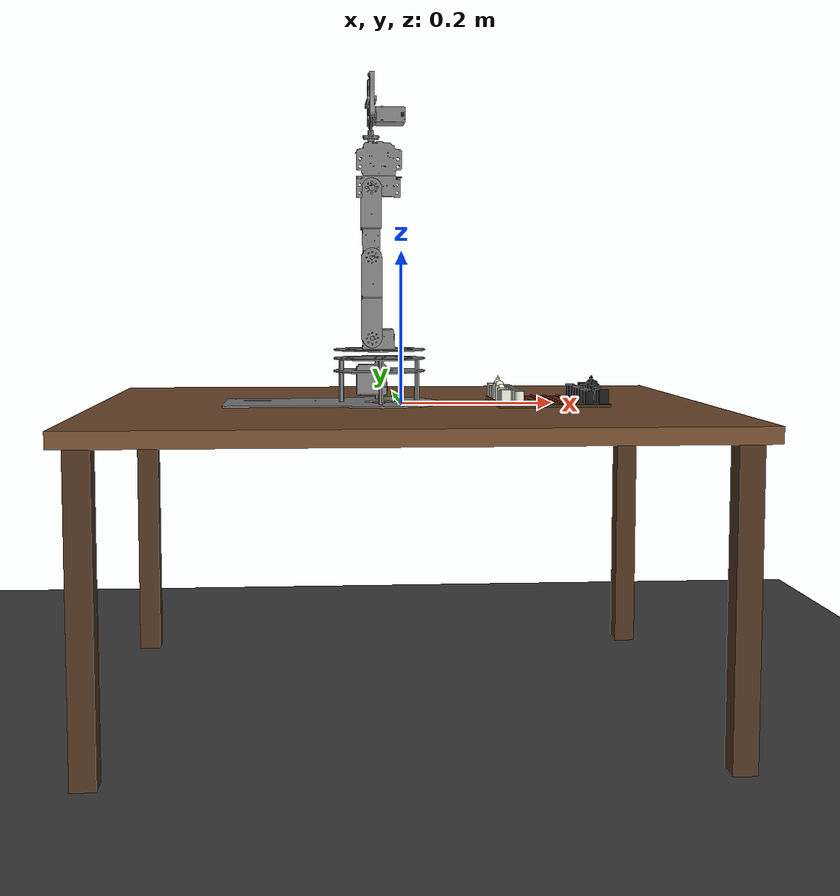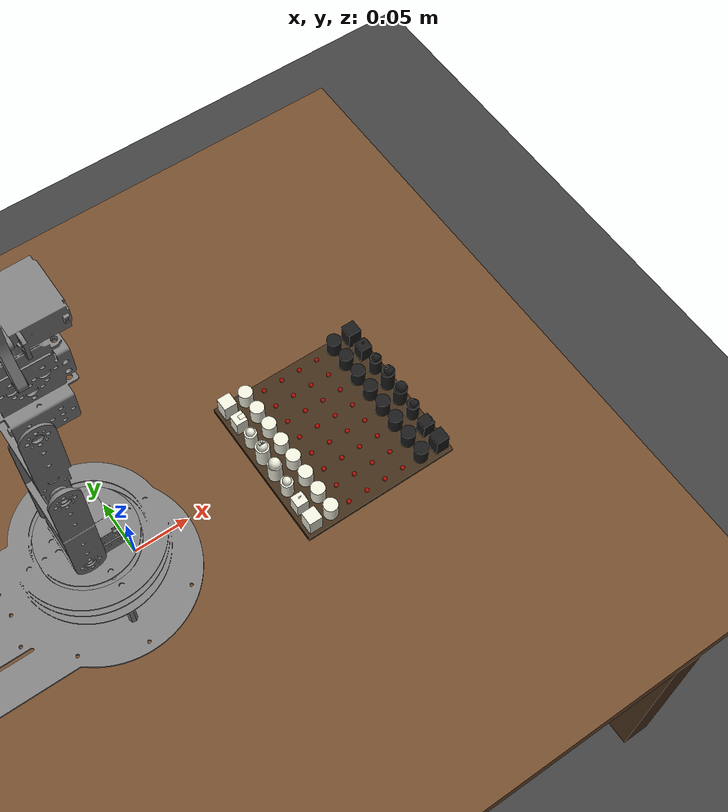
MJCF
<mujoco model="chess_table">
  <compiler angle="radian"/>

  <option integrator="implicitfast"/>

  <visual>
    <global offwidth="1280" offheight="960"/>
    <headlight ambient="0.4 0.4 0.4" diffuse="0.6 0.6 0.6"/>
  </visual>

  <default>
    <default class="arm_main"/>
  </default>

  <asset>
    <texture type="skybox" colorspace="auto" builtin="gradient" rgb1="0.3 0.5 0.7" rgb2="0 0 0" width="256" height="1536"/>
    <texture type="2d" colorspace="auto" name="floor_tex" builtin="checker" rgb1="0.2 0.2 0.2" rgb2="0.3 0.3 0.3" width="300" height="300"/>
    <texture type="2d" colorspace="auto" name="board_tex" builtin="checker" rgb1="0.85 0.82 0.7" rgb2="0.2 0.15 0.1" width="64" height="64"/>
    <material name="floor_mat" texture="floor_tex" texrepeat="6 6"/>
    <material name="table_mat" rgba="0.45 0.3 0.18 1"/>
    <material name="leg_mat" rgba="0.3 0.2 0.12 1"/>
    <material name="board_mat" texture="board_tex" texrepeat="4 4" reflectance="0.05"/>
    <mesh name="arm_base" file="meshes/base.stl"/>
    <mesh name="arm_shoulder" file="meshes/shoulder.stl"/>
    <mesh name="arm_humerus" file="meshes/humerus.stl"/>
    <mesh name="arm_forearm" file="meshes/forearm.stl"/>
    <mesh name="arm_wrist" file="meshes/wrist.stl"/>
    <mesh name="arm_hand" file="meshes/hand.stl"/>
    <mesh name="arm_carpal-left" file="meshes/carpal-left.stl"/>
    <mesh name="arm_carpal-right" file="meshes/carpal-right.stl"/>
    <mesh name="arm_tendon" file="meshes/tendon.stl"/>
    <mesh name="arm_finger" file="meshes/finger.stl"/>
  </asset>

  <worldbody>
    <geom name="floor" size="1.5 1.5 0.01" pos="0 0 -0.4" type="plane" material="floor_mat"/>
    <light pos="0 0 1.5" dir="0 0 -1" type="directional" specular="0.2 0.2 0.2"/>
    <light pos="0.3 0.3 1.2" dir="-0.276172 -0.276172 -0.920575" type="directional" diffuse="0.3 0.3 0.3"/>
    <body name="table">
      <geom name="tabletop" size="0.4 0.32 0.01" pos="0 0 -0.01" type="box" material="table_mat"/>
      <geom name="leg_fl" size="0.015 0.015 0.19" pos="0.37 0.29 -0.21" type="box" material="leg_mat"/>
      <geom name="leg_fr" size="0.015 0.015 0.19" pos="0.37 -0.29 -0.21" type="box" material="leg_mat"/>
      <geom name="leg_bl" size="0.015 0.015 0.19" pos="-0.37 0.29 -0.21" type="box" material="leg_mat"/>
      <geom name="leg_br" size="0.015 0.015 0.19" pos="-0.37 -0.29 -0.21" type="box" material="leg_mat"/>
    </body>
    <body name="chessboard" pos="0.192 0 0">
      <geom name="board_base" size="0.072 0.072 0.002" pos="0 0 0.002" type="box" rgba="0.25 0.18 0.1 1"/>
      <geom name="board_slab" size="0.072 0.072 0.01" pos="0 0 0.0045" type="plane" material="board_mat"/>
      <site name="sq_a1" pos="-0.063 -0.063 0.0046" size="0.002" rgba="1 0 0 0.6"/>
      <site name="sq_a2" pos="-0.045 -0.063 0.0046" size="0.002" rgba="1 0 0 0.6"/>
      <site name="sq_a3" pos="-0.027 -0.063 0.0046" size="0.002" rgba="1 0 0 0.6"/>
      <site name="sq_a4" pos="-0.009 -0.063 0.0046" size="0.002" rgba="1 0 0 0.6"/>
      <site name="sq_a5" pos="0.009 -0.063 0.0046" size="0.002" rgba="1 0 0 0.6"/>
      <site name="sq_a6" pos="0.027 -0.063 0.0046" size="0.002" rgba="1 0 0 0.6"/>
      <site name="sq_a7" pos="0.045 -0.063 0.0046" size="0.002" rgba="1 0 0 0.6"/>
      <site name="sq_a8" pos="0.063 -0.063 0.0046" size="0.002" rgba="1 0 0 0.6"/>
      <site name="sq_b1" pos="-0.063 -0.045 0.0046" size="0.002" rgba="1 0 0 0.6"/>
      <site name="sq_b2" pos="-0.045 -0.045 0.0046" size="0.002" rgba="1 0 0 0.6"/>
      <site name="sq_b3" pos="-0.027 -0.045 0.0046" size="0.002" rgba="1 0 0 0.6"/>
      <site name="sq_b4" pos="-0.009 -0.045 0.0046" size="0.002" rgba="1 0 0 0.6"/>
      <site name="sq_b5" pos="0.009 -0.045 0.0046" size="0.002" rgba="1 0 0 0.6"/>
      <site name="sq_b6" pos="0.027 -0.045 0.0046" size="0.002" rgba="1 0 0 0.6"/>
      <site name="sq_b7" pos="0.045 -0.045 0.0046" size="0.002" rgba="1 0 0 0.6"/>
      <site name="sq_b8" pos="0.063 -0.045 0.0046" size="0.002" rgba="1 0 0 0.6"/>
      <site name="sq_c1" pos="-0.063 -0.027 0.0046" size="0.002" rgba="1 0 0 0.6"/>
      <site name="sq_c2" pos="-0.045 -0.027 0.0046" size="0.002" rgba="1 0 0 0.6"/>
      <site name="sq_c3" pos="-0.027 -0.027 0.0046" size="0.002" rgba="1 0 0 0.6"/>
      <site name="sq_c4" pos="-0.009 -0.027 0.0046" size="0.002" rgba="1 0 0 0.6"/>
      <site name="sq_c5" pos="0.009 -0.027 0.0046" size="0.002" rgba="1 0 0 0.6"/>
      <site name="sq_c6" pos="0.027 -0.027 0.0046" size="0.002" rgba="1 0 0 0.6"/>
      <site name="sq_c7" pos="0.045 -0.027 0.0046" size="0.002" rgba="1 0 0 0.6"/>
      <site name="sq_c8" pos="0.063 -0.027 0.0046" size="0.002" rgba="1 0 0 0.6"/>
      <site name="sq_d1" pos="-0.063 -0.009 0.0046" size="0.002" rgba="1 0 0 0.6"/>
      <site name="sq_d2" pos="-0.045 -0.009 0.0046" size="0.002" rgba="1 0 0 0.6"/>
      <site name="sq_d3" pos="-0.027 -0.009 0.0046" size="0.002" rgba="1 0 0 0.6"/>
      <site name="sq_d4" pos="-0.009 -0.009 0.0046" size="0.002" rgba="1 0 0 0.6"/>
      <site name="sq_d5" pos="0.009 -0.009 0.0046" size="0.002" rgba="1 0 0 0.6"/>
      <site name="sq_d6" pos="0.027 -0.009 0.0046" size="0.002" rgba="1 0 0 0.6"/>
      <site name="sq_d7" pos="0.045 -0.009 0.0046" size="0.002" rgba="1 0 0 0.6"/>
      <site name="sq_d8" pos="0.063 -0.009 0.0046" size="0.002" rgba="1 0 0 0.6"/>
      <site name="sq_e1" pos="-0.063 0.009 0.0046" size="0.002" rgba="1 0 0 0.6"/>
      <site name="sq_e2" pos="-0.045 0.009 0.0046" size="0.002" rgba="1 0 0 0.6"/>
      <site name="sq_e3" pos="-0.027 0.009 0.0046" size="0.002" rgba="1 0 0 0.6"/>
      <site name="sq_e4" pos="-0.009 0.009 0.0046" size="0.002" rgba="1 0 0 0.6"/>
      <site name="sq_e5" pos="0.009 0.009 0.0046" size="0.002" rgba="1 0 0 0.6"/>
      <site name="sq_e6" pos="0.027 0.009 0.0046" size="0.002" rgba="1 0 0 0.6"/>
      <site name="sq_e7" pos="0.045 0.009 0.0046" size="0.002" rgba="1 0 0 0.6"/>
      <site name="sq_e8" pos="0.063 0.009 0.0046" size="0.002" rgba="1 0 0 0.6"/>
      <site name="sq_f1" pos="-0.063 0.027 0.0046" size="0.002" rgba="1 0 0 0.6"/>
      <site name="sq_f2" pos="-0.045 0.027 0.0046" size="0.002" rgba="1 0 0 0.6"/>
      <site name="sq_f3" pos="-0.027 0.027 0.0046" size="0.002" rgba="1 0 0 0.6"/>
      <site name="sq_f4" pos="-0.009 0.027 0.0046" size="0.002" rgba="1 0 0 0.6"/>
      <site name="sq_f5" pos="0.009 0.027 0.0046" size="0.002" rgba="1 0 0 0.6"/>
      <site name="sq_f6" pos="0.027 0.027 0.0046" size="0.002" rgba="1 0 0 0.6"/>
      <site name="sq_f7" pos="0.045 0.027 0.0046" size="0.002" rgba="1 0 0 0.6"/>
      <site name="sq_f8" pos="0.063 0.027 0.0046" size="0.002" rgba="1 0 0 0.6"/>
      <site name="sq_g1" pos="-0.063 0.045 0.0046" size="0.002" rgba="1 0 0 0.6"/>
      <site name="sq_g2" pos="-0.045 0.045 0.0046" size="0.002" rgba="1 0 0 0.6"/>
      <site name="sq_g3" pos="-0.027 0.045 0.0046" size="0.002" rgba="1 0 0 0.6"/>
      <site name="sq_g4" pos="-0.009 0.045 0.0046" size="0.002" rgba="1 0 0 0.6"/>
      <site name="sq_g5" pos="0.009 0.045 0.0046" size="0.002" rgba="1 0 0 0.6"/>
      <site name="sq_g6" pos="0.027 0.045 0.0046" size="0.002" rgba="1 0 0 0.6"/>
      <site name="sq_g7" pos="0.045 0.045 0.0046" size="0.002" rgba="1 0 0 0.6"/>
      <site name="sq_g8" pos="0.063 0.045 0.0046" size="0.002" rgba="1 0 0 0.6"/>
      <site name="sq_h1" pos="-0.063 0.063 0.0046" size="0.002" rgba="1 0 0 0.6"/>
      <site name="sq_h2" pos="-0.045 0.063 0.0046" size="0.002" rgba="1 0 0 0.6"/>
      <site name="sq_h3" pos="-0.027 0.063 0.0046" size="0.002" rgba="1 0 0 0.6"/>
      <site name="sq_h4" pos="-0.009 0.063 0.0046" size="0.002" rgba="1 0 0 0.6"/>
      <site name="sq_h5" pos="0.009 0.063 0.0046" size="0.002" rgba="1 0 0 0.6"/>
      <site name="sq_h6" pos="0.027 0.063 0.0046" size="0.002" rgba="1 0 0 0.6"/>
      <site name="sq_h7" pos="0.045 0.063 0.0046" size="0.002" rgba="1 0 0 0.6"/>
      <site name="sq_h8" pos="0.063 0.063 0.0046" size="0.002" rgba="1 0 0 0.6"/>
    </body>
    <body name="arm_base_link" pos="-0.03 0 0">
      <inertial pos="-0.06074 0 0.03285" quat="0 0.707107 0 0.707107" mass="0.05013" diaginertia="0.0004413 0.0003608 0.0001333"/>
      <geom type="mesh" contype="0" conaffinity="0" group="1" density="0" mesh="arm_base"/>
      <body name="arm_shoulder_link" pos="0 0 0.059">
        <inertial pos="-0.00071 0 0.02011" quat="0.5 0.5 -0.5 0.5" mass="0.01934" diaginertia="2.115e-05 1.303e-05 1.303e-05"/>
        <joint name="arm_shoulder_pan" pos="0 0 0" axis="0 0 1" range="-1.57 1.57" actuatorfrcrange="-1000 1000" armature="0.002"/>
        <geom type="mesh" contype="0" conaffinity="0" group="1" density="0" mesh="arm_shoulder"/>
        <body name="arm_humerus_link" pos="-0.01 0 0.028">
          <inertial pos="0.00021 -0.00054 0.0526" mass="0.00777" diaginertia="1.281e-05 1.119e-05 2.437e-06"/>
          <joint name="arm_shoulder_lift" pos="0 0 0" axis="0 1 0" range="-1.57 1.57" actuatorfrcrange="-1000 1000" armature="0.002"/>
          <geom type="mesh" contype="0" conaffinity="0" group="1" density="0" mesh="arm_humerus"/>
          <body name="arm_forearm_link" pos="0 0 0.105">
            <inertial pos="-4e-05 0 0.04562" mass="0.0167" diaginertia="2.15e-05 1.801e-05 5.233e-06"/>
            <joint name="arm_elbow" pos="0 0 0" axis="0 -1 0" range="-1.57 1.57" actuatorfrcrange="-1000 1000" armature="0.002"/>
            <geom type="mesh" contype="0" conaffinity="0" group="1" density="0" mesh="arm_forearm"/>
            <body name="arm_wrist_link" pos="0 0 0.09">
              <inertial pos="0.00986 0.00055 0.02407" quat="0.707107 0 0 0.707107" mass="0.01248" diaginertia="8.791e-06 7.419e-06 5.697e-06"/>
              <joint name="arm_wrist_flex" pos="0 0 0" axis="0 -1 0" range="-1.57 1.57" actuatorfrcrange="-1000 1000" armature="0.002"/>
              <geom type="mesh" contype="0" conaffinity="0" group="1" density="0" mesh="arm_wrist"/>
              <body name="arm_hand_link" pos="0 0 0.06">
                <inertial pos="0.01616 -0.00431 0.02777" mass="0.00687" diaginertia="3.57e-06 3.492e-06 3.468e-06"/>
                <joint name="arm_wrist_roll" pos="0 0 0" axis="0 0 1" range="-1.57 1.57" actuatorfrcrange="-1000 1000" armature="0.002"/>
                <geom type="mesh" contype="0" conaffinity="0" group="1" density="0" mesh="arm_hand"/>
                <site name="gripper_tip" pos="0 0 0.085" size="0.004"/>
                <body name="arm_grip_left_link" pos="0 0.015 0.03" quat="0.707388 -0.706825 0 0">
                  <inertial pos="-0.00029 -0.00139 0.00928" mass="0.005" diaginertia="1.343e-06 1.024e-06 3.261e-07"/>
                  <joint name="arm_grip_left" pos="0 0 0" axis="-1 0 0" range="-1.57 0" actuatorfrcrange="-1000 1000" armature="0.002"/>
                  <geom type="mesh" contype="0" conaffinity="0" group="1" density="0" mesh="arm_carpal-left"/>
                  <body name="arm_finger_left_link" pos="0 0 0.03" quat="0.707388 0.706825 0 0">
                    <inertial pos="4e-05 -0.00518 0.02471" mass="0.005" diaginertia="1.641e-06 1.482e-06 1.891e-07"/>
                    <joint name="arm_finger_left" pos="0 0 0" axis="-1 0 0" range="-3.14 3.14" actuatorfrcrange="-1000 1000" damping="0.08"/>
                    <geom type="mesh" contype="0" conaffinity="0" group="1" density="0" mesh="arm_finger"/>
                  </body>
                </body>
                <body name="arm_grip_right_link" pos="0 -0.015 0.03" quat="0.707388 0.706825 0 0">
                  <inertial pos="0.00458 0.00164 0.00981" mass="0.005" diaginertia="1.344e-06 1.047e-06 3.536e-07"/>
                  <joint name="arm_grip_right" pos="0 0 0" axis="-1 0 0" range="-3.14 3.14" actuatorfrcrange="-1000 1000" damping="0.08"/>
                  <geom type="mesh" contype="0" conaffinity="0" group="1" density="0" mesh="arm_carpal-right"/>
                  <body name="arm_finger_right_link" pos="0 0 0.03" quat="0.707388 -0.706825 0 0">
                    <inertial pos="4e-05 -0.00518 0.02471" mass="0.005" diaginertia="1.641e-06 1.482e-06 1.891e-07"/>
                    <joint name="arm_finger_right" pos="0 0 0" axis="-1 0 0" range="-3.14 3.14" actuatorfrcrange="-1000 1000" damping="0.08"/>
                    <geom quat="1.32679e-06 0 0 1" type="mesh" contype="0" conaffinity="0" group="1" density="0" mesh="arm_finger"/>
                  </body>
                </body>
                <body name="arm_tendon_left_link" pos="0 0.005 0.05" quat="0.707388 -0.706825 0 0">
                  <inertial pos="4e-05 -8e-05 0.01451" quat="0.707107 0 0 0.707107" mass="0.005" diaginertia="6e-07 5.61e-07 8.101e-08"/>
                  <joint name="arm_tendon_left" pos="0 0 0" axis="-1 0 0" range="-3.14 3.14" actuatorfrcrange="-1000 1000" damping="0.08"/>
                  <geom type="mesh" contype="0" conaffinity="0" group="1" density="0" mesh="arm_tendon"/>
                </body>
                <body name="arm_tendon_right_link" pos="0 -0.005 0.05" quat="0.707388 0.706825 0 0">
                  <inertial pos="4e-05 -8e-05 0.01451" quat="0.707107 0 0 0.707107" mass="0.005" diaginertia="6e-07 5.61e-07 8.101e-08"/>
                  <joint name="arm_tendon_right" pos="0 0 0" axis="-1 0 0" range="-3.14 3.14" actuatorfrcrange="-1000 1000" damping="0.08"/>
                  <geom type="mesh" contype="0" conaffinity="0" group="1" density="0" mesh="arm_tendon"/>
                </body>
              </body>
            </body>
          </body>
        </body>
      </body>
    </body>
    <body name="piece_a1" pos="0.129 -0.063 0.0046">
      <joint type="free"/>
      <geom size="0.00612 0.00612 0.009" pos="0 0 0.009" type="box" rgba="0.92 0.92 0.85 1"/>
    </body>
    <body name="piece_a8" pos="0.255 -0.063 0.0046">
      <joint type="free"/>
      <geom size="0.00612 0.00612 0.009" pos="0 0 0.009" type="box" rgba="0.1 0.1 0.1 1"/>
    </body>
    <body name="piece_b1" pos="0.129 -0.045 0.0046">
      <joint type="free"/>
      <geom size="0.0054 0.0054 0.0081" pos="0 0 0.0081" type="box" rgba="0.92 0.92 0.85 1"/>
      <geom size="0.00288 0.00216 0.00216" pos="0.00288 0 0.01404" type="box" rgba="0.92 0.92 0.85 1"/>
    </body>
    <body name="piece_b8" pos="0.255 -0.045 0.0046">
      <joint type="free"/>
      <geom size="0.0054 0.0054 0.0081" pos="0 0 0.0081" type="box" rgba="0.1 0.1 0.1 1"/>
      <geom size="0.00288 0.00216 0.00216" pos="0.00288 0 0.01404" type="box" rgba="0.1 0.1 0.1 1"/>
    </body>
    <body name="piece_c1" pos="0.129 -0.027 0.0046">
      <joint type="free"/>
      <geom size="0.0054 0.009" pos="0 0 0.009" type="cylinder" rgba="0.92 0.92 0.85 1"/>
      <geom size="0.00396" pos="0 0 0.0189" rgba="0.92 0.92 0.85 1"/>
    </body>
    <body name="piece_c8" pos="0.255 -0.027 0.0046">
      <joint type="free"/>
      <geom size="0.0054 0.009" pos="0 0 0.009" type="cylinder" rgba="0.1 0.1 0.1 1"/>
      <geom size="0.00396" pos="0 0 0.0189" rgba="0.1 0.1 0.1 1"/>
    </body>
    <body name="piece_d1" pos="0.129 -0.009 0.0046">
      <joint type="free"/>
      <geom size="0.00612 0.0099" pos="0 0 0.0099" type="cylinder" rgba="0.92 0.92 0.85 1"/>
      <geom size="0.0054" pos="0 0 0.0207" rgba="0.92 0.92 0.85 1"/>
    </body>
    <body name="piece_d8" pos="0.255 -0.009 0.0046">
      <joint type="free"/>
      <geom size="0.00612 0.0099" pos="0 0 0.0099" type="cylinder" rgba="0.1 0.1 0.1 1"/>
      <geom size="0.0054" pos="0 0 0.0207" rgba="0.1 0.1 0.1 1"/>
    </body>
    <body name="piece_e1" pos="0.129 0.009 0.0046">
      <joint type="free"/>
      <geom size="0.00612 0.0108" pos="0 0 0.0108" type="cylinder" rgba="0.92 0.92 0.85 1"/>
      <geom size="0.00468" pos="0 0 0.02232" rgba="0.92 0.92 0.85 1"/>
      <geom size="0.0009 0.0009 0.00324" pos="0 0 0.0279" type="box" rgba="0.92 0.92 0.85 1"/>
      <geom size="0.00252 0.0009 0.0009" pos="0 0 0.0279" type="box" rgba="0.92 0.92 0.85 1"/>
    </body>
    <body name="piece_e8" pos="0.255 0.009 0.0046">
      <joint type="free"/>
      <geom size="0.00612 0.0108" pos="0 0 0.0108" type="cylinder" rgba="0.1 0.1 0.1 1"/>
      <geom size="0.00468" pos="0 0 0.02232" rgba="0.1 0.1 0.1 1"/>
      <geom size="0.0009 0.0009 0.00324" pos="0 0 0.0279" type="box" rgba="0.1 0.1 0.1 1"/>
      <geom size="0.00252 0.0009 0.0009" pos="0 0 0.0279" type="box" rgba="0.1 0.1 0.1 1"/>
    </body>
    <body name="piece_f1" pos="0.129 0.027 0.0046">
      <joint type="free"/>
      <geom size="0.0054 0.009" pos="0 0 0.009" type="cylinder" rgba="0.92 0.92 0.85 1"/>
      <geom size="0.00396" pos="0 0 0.0189" rgba="0.92 0.92 0.85 1"/>
    </body>
    <body name="piece_f8" pos="0.255 0.027 0.0046">
      <joint type="free"/>
      <geom size="0.0054 0.009" pos="0 0 0.009" type="cylinder" rgba="0.1 0.1 0.1 1"/>
      <geom size="0.00396" pos="0 0 0.0189" rgba="0.1 0.1 0.1 1"/>
    </body>
    <body name="piece_g1" pos="0.129 0.045 0.0046">
      <joint type="free"/>
      <geom size="0.0054 0.0054 0.0081" pos="0 0 0.0081" type="box" rgba="0.92 0.92 0.85 1"/>
      <geom size="0.00288 0.00216 0.00216" pos="0.00288 0 0.01404" type="box" rgba="0.92 0.92 0.85 1"/>
    </body>
    <body name="piece_g8" pos="0.255 0.045 0.0046">
      <joint type="free"/>
      <geom size="0.0054 0.0054 0.0081" pos="0 0 0.0081" type="box" rgba="0.1 0.1 0.1 1"/>
      <geom size="0.00288 0.00216 0.00216" pos="0.00288 0 0.01404" type="box" rgba="0.1 0.1 0.1 1"/>
    </body>
    <body name="piece_h1" pos="0.129 0.063 0.0046">
      <joint type="free"/>
      <geom size="0.00612 0.00612 0.009" pos="0 0 0.009" type="box" rgba="0.92 0.92 0.85 1"/>
    </body>
    <body name="piece_h8" pos="0.255 0.063 0.0046">
      <joint type="free"/>
      <geom size="0.00612 0.00612 0.009" pos="0 0 0.009" type="box" rgba="0.1 0.1 0.1 1"/>
    </body>
    <body name="piece_a2" pos="0.147 -0.063 0.0046">
      <joint type="free"/>
      <geom size="0.0063 0.0081" pos="0 0 0.0081" type="cylinder" rgba="0.92 0.92 0.85 1"/>
    </body>
    <body name="piece_a7" pos="0.237 -0.063 0.0046">
      <joint type="free"/>
      <geom size="0.0063 0.0081" pos="0 0 0.0081" type="cylinder" rgba="0.1 0.1 0.1 1"/>
    </body>
    <body name="piece_b2" pos="0.147 -0.045 0.0046">
      <joint type="free"/>
      <geom size="0.0063 0.0081" pos="0 0 0.0081" type="cylinder" rgba="0.92 0.92 0.85 1"/>
    </body>
    <body name="piece_b7" pos="0.237 -0.045 0.0046">
      <joint type="free"/>
      <geom size="0.0063 0.0081" pos="0 0 0.0081" type="cylinder" rgba="0.1 0.1 0.1 1"/>
    </body>
    <body name="piece_c2" pos="0.147 -0.027 0.0046">
      <joint type="free"/>
      <geom size="0.0063 0.0081" pos="0 0 0.0081" type="cylinder" rgba="0.92 0.92 0.85 1"/>
    </body>
    <body name="piece_c7" pos="0.237 -0.027 0.0046">
      <joint type="free"/>
      <geom size="0.0063 0.0081" pos="0 0 0.0081" type="cylinder" rgba="0.1 0.1 0.1 1"/>
    </body>
    <body name="piece_d2" pos="0.147 -0.009 0.0046">
      <joint type="free"/>
      <geom size="0.0063 0.0081" pos="0 0 0.0081" type="cylinder" rgba="0.92 0.92 0.85 1"/>
    </body>
    <body name="piece_d7" pos="0.237 -0.009 0.0046">
      <joint type="free"/>
      <geom size="0.0063 0.0081" pos="0 0 0.0081" type="cylinder" rgba="0.1 0.1 0.1 1"/>
    </body>
    <body name="piece_e2" pos="0.147 0.009 0.0046">
      <joint type="free"/>
      <geom size="0.0063 0.0081" pos="0 0 0.0081" type="cylinder" rgba="0.92 0.92 0.85 1"/>
    </body>
    <body name="piece_e7" pos="0.237 0.009 0.0046">
      <joint type="free"/>
      <geom size="0.0063 0.0081" pos="0 0 0.0081" type="cylinder" rgba="0.1 0.1 0.1 1"/>
    </body>
    <body name="piece_f2" pos="0.147 0.027 0.0046">
      <joint type="free"/>
      <geom size="0.0063 0.0081" pos="0 0 0.0081" type="cylinder" rgba="0.92 0.92 0.85 1"/>
    </body>
    <body name="piece_f7" pos="0.237 0.027 0.0046">
      <joint type="free"/>
      <geom size="0.0063 0.0081" pos="0 0 0.0081" type="cylinder" rgba="0.1 0.1 0.1 1"/>
    </body>
    <body name="piece_g2" pos="0.147 0.045 0.0046">
      <joint type="free"/>
      <geom size="0.0063 0.0081" pos="0 0 0.0081" type="cylinder" rgba="0.92 0.92 0.85 1"/>
    </body>
    <body name="piece_g7" pos="0.237 0.045 0.0046">
      <joint type="free"/>
      <geom size="0.0063 0.0081" pos="0 0 0.0081" type="cylinder" rgba="0.1 0.1 0.1 1"/>
    </body>
    <body name="piece_h2" pos="0.147 0.063 0.0046">
      <joint type="free"/>
      <geom size="0.0063 0.0081" pos="0 0 0.0081" type="cylinder" rgba="0.92 0.92 0.85 1"/>
    </body>
    <body name="piece_h7" pos="0.237 0.063 0.0046">
      <joint type="free"/>
      <geom size="0.0063 0.0081" pos="0 0 0.0081" type="cylinder" rgba="0.1 0.1 0.1 1"/>
    </body>
  </worldbody>

  <equality>
    <joint joint1="arm_grip_right" joint2="arm_grip_left" polycoef="0 -1 0 0 0"/>
    <joint joint1="arm_tendon_left" joint2="arm_grip_left" polycoef="0 1 0 0 0"/>
    <joint joint1="arm_tendon_right" joint2="arm_grip_left" polycoef="0 -1 0 0 0"/>
    <joint joint1="arm_finger_left" joint2="arm_grip_left" polycoef="0 -1 0 0 0"/>
    <joint joint1="arm_finger_right" joint2="arm_grip_left" polycoef="0 1 0 0 0"/>
  </equality>

  <actuator>
    <general name="act_shoulder_pan" joint="arm_shoulder_pan" ctrlrange="-1.57 1.57" biastype="affine" gainprm="40" biasprm="0 -40 -4"/>
    <general name="act_shoulder_lift" joint="arm_shoulder_lift" ctrlrange="-1.57 1.57" biastype="affine" gainprm="40" biasprm="0 -40 -4"/>
    <general name="act_elbow" joint="arm_elbow" ctrlrange="-1.57 1.57" biastype="affine" gainprm="40" biasprm="0 -40 -4"/>
    <general name="act_wrist_flex" joint="arm_wrist_flex" ctrlrange="-1.57 1.57" biastype="affine" gainprm="40" biasprm="0 -40 -4"/>
    <general name="act_wrist_roll" joint="arm_wrist_roll" ctrlrange="-1.57 1.57" biastype="affine" gainprm="40" biasprm="0 -40 -4"/>
    <general name="act_grip_left" joint="arm_grip_left" ctrlrange="-1.57 0" biastype="affine" gainprm="40" biasprm="0 -40 -4"/>
  </actuator>
</mujoco>
